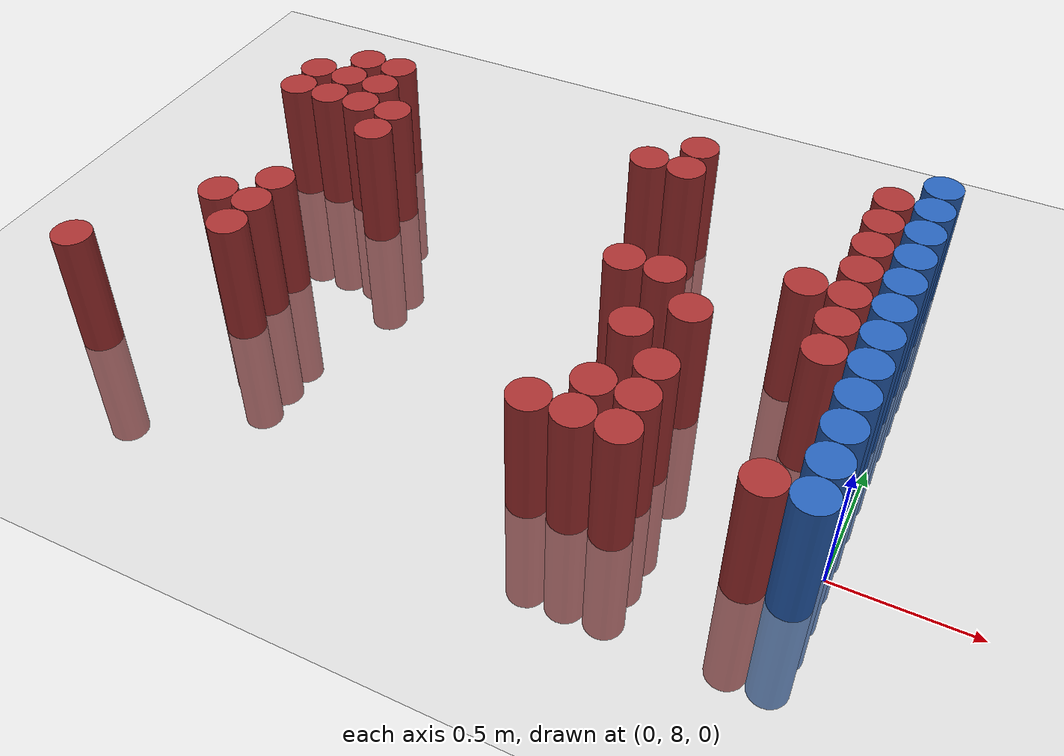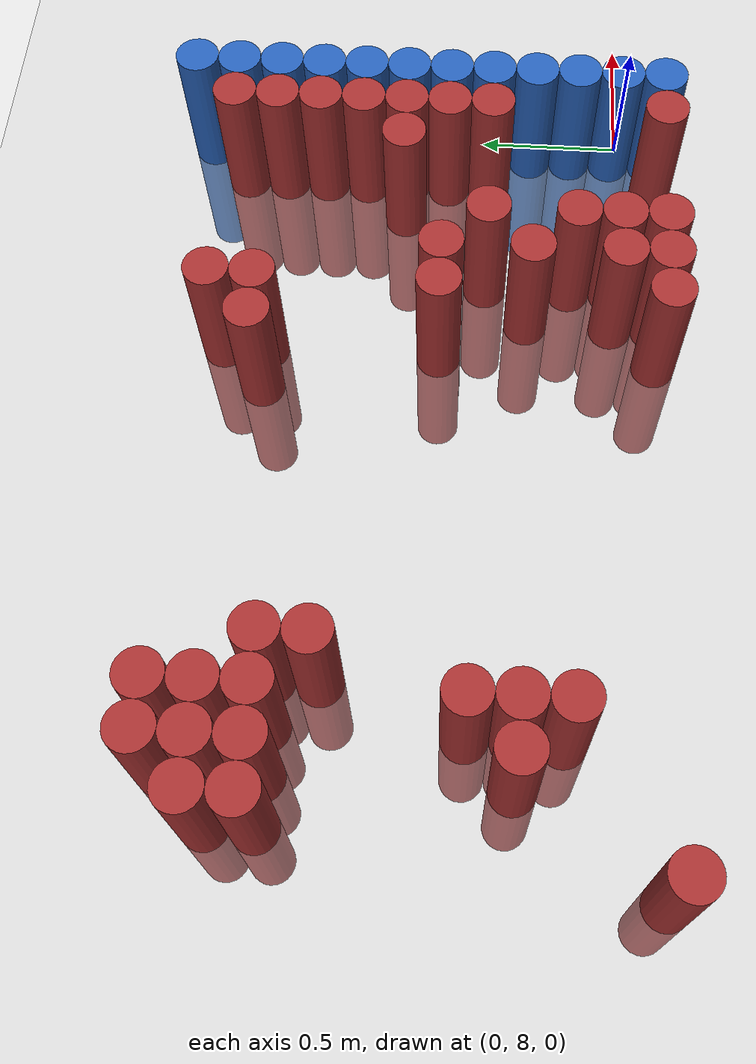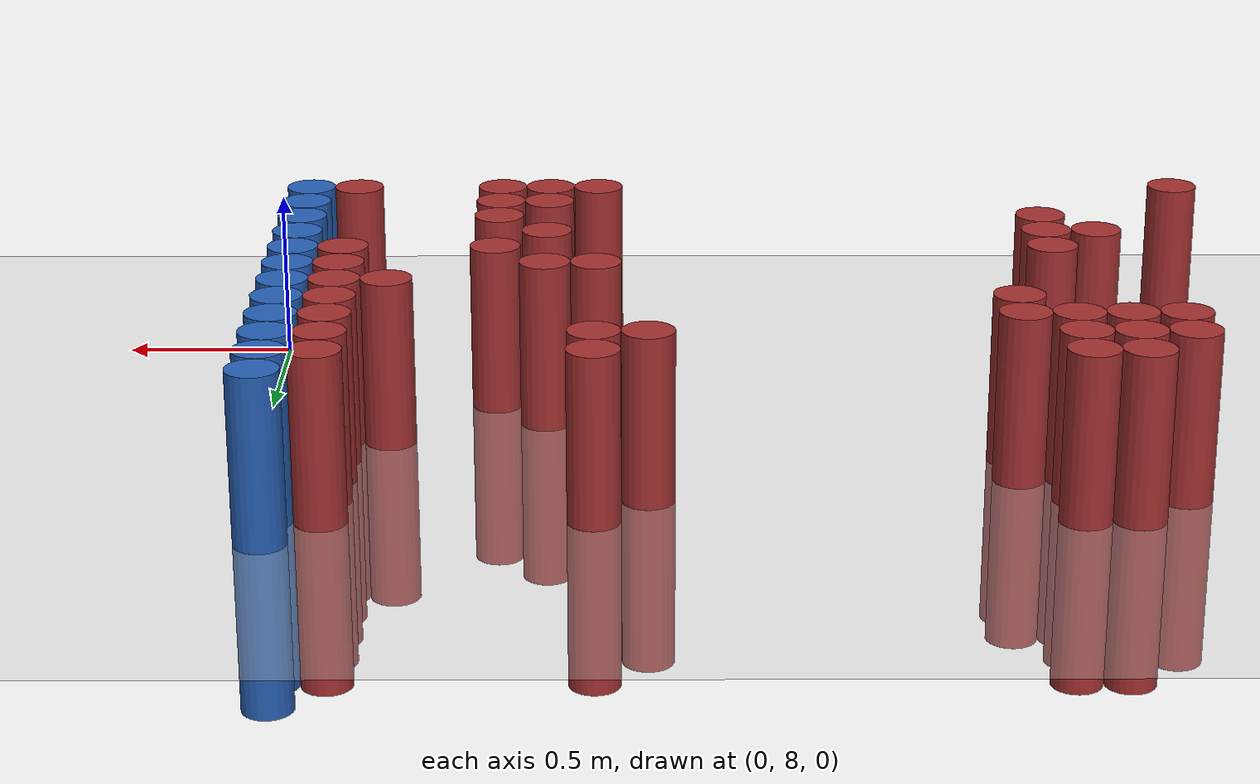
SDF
<sdf version="1.6">
 <world name="default">
  <model name="ground_plane">
   <static>1</static>
   <link name="link">
    <collision name="collision">
     <geometry><plane><normal>0 0 1</normal><size>100 100</size></plane></geometry>
     <surface><friction><ode><mu>100</mu><mu2>50</mu2></ode></friction></surface>
    </collision>
    <visual name="visual">
     <cast_shadows>0</cast_shadows>
     <geometry><plane><normal>0 0 1</normal><size>100 100</size></plane></geometry>
     <material>
      <script><uri>file://media/materials/scripts/gazebo.material</uri><name>Gazebo/Grey</name></script>
     </material>
    </visual>
   </link>
  </model>
  <model name="unit_cylinder_217">
   <static>1</static>
   <pose>-2.775000 7.875000 0.000000 0.000000 0.000000 0.000000</pose>
   <link name="link">
    <inertial>
     <mass>1</mass>
     <inertia><ixx>0.145833</ixx><ixy>0</ixy><ixz>0</ixz><iyy>0.145833</iyy><iyz>0</iyz><izz>0.125</izz></inertia>
    </inertial>
    <collision name="collision">
     <geometry><cylinder><radius>0.075000</radius><length>1</length></cylinder></geometry>
    </collision>
    <visual name="visual">
     <geometry><cylinder><radius>0.075000</radius><length>1</length></cylinder></geometry>
     <material>
      <ambient>0.648000 0.192000 0.192000 1</ambient>
      <diffuse>0.648000 0.192000 0.192000 1</diffuse>
     </material>
     <material>
      <script><name>Gazebo/Grey</name><uri>file://media/materials/scripts/gazebo.material</uri></script>
     </material>
    </visual>
   </link>
  </model>
  <model name="unit_cylinder_221">
   <static>1</static>
   <pose>-2.625000 9.075000 0.000000 0.000000 0.000000 0.000000</pose>
   <link name="link">
    <inertial>
     <mass>1</mass>
     <inertia><ixx>0.145833</ixx><ixy>0</ixy><ixz>0</ixz><iyy>0.145833</iyy><iyz>0</iyz><izz>0.125</izz></inertia>
    </inertial>
    <collision name="collision">
     <geometry><cylinder><radius>0.075000</radius><length>1</length></cylinder></geometry>
    </collision>
    <visual name="visual">
     <geometry><cylinder><radius>0.075000</radius><length>1</length></cylinder></geometry>
     <material>
      <ambient>0.648000 0.192000 0.192000 1</ambient>
      <diffuse>0.648000 0.192000 0.192000 1</diffuse>
     </material>
     <material>
      <script><name>Gazebo/Grey</name><uri>file://media/materials/scripts/gazebo.material</uri></script>
     </material>
    </visual>
   </link>
  </model>
  <model name="unit_cylinder_222">
   <static>1</static>
   <pose>-2.625000 9.225000 0.000000 0.000000 0.000000 0.000000</pose>
   <link name="link">
    <inertial>
     <mass>1</mass>
     <inertia><ixx>0.145833</ixx><ixy>0</ixy><ixz>0</ixz><iyy>0.145833</iyy><iyz>0</iyz><izz>0.125</izz></inertia>
    </inertial>
    <collision name="collision">
     <geometry><cylinder><radius>0.075000</radius><length>1</length></cylinder></geometry>
    </collision>
    <visual name="visual">
     <geometry><cylinder><radius>0.075000</radius><length>1</length></cylinder></geometry>
     <material>
      <ambient>0.648000 0.192000 0.192000 1</ambient>
      <diffuse>0.648000 0.192000 0.192000 1</diffuse>
     </material>
     <material>
      <script><name>Gazebo/Grey</name><uri>file://media/materials/scripts/gazebo.material</uri></script>
     </material>
    </visual>
   </link>
  </model>
  <model name="unit_cylinder_226">
   <static>1</static>
   <pose>-2.475000 8.325000 0.000000 0.000000 0.000000 0.000000</pose>
   <link name="link">
    <inertial>
     <mass>1</mass>
     <inertia><ixx>0.145833</ixx><ixy>0</ixy><ixz>0</ixz><iyy>0.145833</iyy><iyz>0</iyz><izz>0.125</izz></inertia>
    </inertial>
    <collision name="collision">
     <geometry><cylinder><radius>0.075000</radius><length>1</length></cylinder></geometry>
    </collision>
    <visual name="visual">
     <geometry><cylinder><radius>0.075000</radius><length>1</length></cylinder></geometry>
     <material>
      <ambient>0.648000 0.192000 0.192000 1</ambient>
      <diffuse>0.648000 0.192000 0.192000 1</diffuse>
     </material>
     <material>
      <script><name>Gazebo/Grey</name><uri>file://media/materials/scripts/gazebo.material</uri></script>
     </material>
    </visual>
   </link>
  </model>
  <model name="unit_cylinder_227">
   <static>1</static>
   <pose>-2.475000 9.075000 0.000000 0.000000 0.000000 0.000000</pose>
   <link name="link">
    <inertial>
     <mass>1</mass>
     <inertia><ixx>0.145833</ixx><ixy>0</ixy><ixz>0</ixz><iyy>0.145833</iyy><iyz>0</iyz><izz>0.125</izz></inertia>
    </inertial>
    <collision name="collision">
     <geometry><cylinder><radius>0.075000</radius><length>1</length></cylinder></geometry>
    </collision>
    <visual name="visual">
     <geometry><cylinder><radius>0.075000</radius><length>1</length></cylinder></geometry>
     <material>
      <ambient>0.648000 0.192000 0.192000 1</ambient>
      <diffuse>0.648000 0.192000 0.192000 1</diffuse>
     </material>
     <material>
      <script><name>Gazebo/Grey</name><uri>file://media/materials/scripts/gazebo.material</uri></script>
     </material>
    </visual>
   </link>
  </model>
  <model name="unit_cylinder_228">
   <static>1</static>
   <pose>-2.475000 9.225000 0.000000 0.000000 0.000000 0.000000</pose>
   <link name="link">
    <inertial>
     <mass>1</mass>
     <inertia><ixx>0.145833</ixx><ixy>0</ixy><ixz>0</ixz><iyy>0.145833</iyy><iyz>0</iyz><izz>0.125</izz></inertia>
    </inertial>
    <collision name="collision">
     <geometry><cylinder><radius>0.075000</radius><length>1</length></cylinder></geometry>
    </collision>
    <visual name="visual">
     <geometry><cylinder><radius>0.075000</radius><length>1</length></cylinder></geometry>
     <material>
      <ambient>0.648000 0.192000 0.192000 1</ambient>
      <diffuse>0.648000 0.192000 0.192000 1</diffuse>
     </material>
     <material>
      <script><name>Gazebo/Grey</name><uri>file://media/materials/scripts/gazebo.material</uri></script>
     </material>
    </visual>
   </link>
  </model>
  <model name="unit_cylinder_229">
   <static>1</static>
   <pose>-2.475000 9.375000 0.000000 0.000000 0.000000 0.000000</pose>
   <link name="link">
    <inertial>
     <mass>1</mass>
     <inertia><ixx>0.145833</ixx><ixy>0</ixy><ixz>0</ixz><iyy>0.145833</iyy><iyz>0</iyz><izz>0.125</izz></inertia>
    </inertial>
    <collision name="collision">
     <geometry><cylinder><radius>0.075000</radius><length>1</length></cylinder></geometry>
    </collision>
    <visual name="visual">
     <geometry><cylinder><radius>0.075000</radius><length>1</length></cylinder></geometry>
     <material>
      <ambient>0.648000 0.192000 0.192000 1</ambient>
      <diffuse>0.648000 0.192000 0.192000 1</diffuse>
     </material>
     <material>
      <script><name>Gazebo/Grey</name><uri>file://media/materials/scripts/gazebo.material</uri></script>
     </material>
    </visual>
   </link>
  </model>
  <model name="unit_cylinder_234">
   <static>1</static>
   <pose>-2.325000 8.175000 0.000000 0.000000 0.000000 0.000000</pose>
   <link name="link">
    <inertial>
     <mass>1</mass>
     <inertia><ixx>0.145833</ixx><ixy>0</ixy><ixz>0</ixz><iyy>0.145833</iyy><iyz>0</iyz><izz>0.125</izz></inertia>
    </inertial>
    <collision name="collision">
     <geometry><cylinder><radius>0.075000</radius><length>1</length></cylinder></geometry>
    </collision>
    <visual name="visual">
     <geometry><cylinder><radius>0.075000</radius><length>1</length></cylinder></geometry>
     <material>
      <ambient>0.648000 0.192000 0.192000 1</ambient>
      <diffuse>0.648000 0.192000 0.192000 1</diffuse>
     </material>
     <material>
      <script><name>Gazebo/Grey</name><uri>file://media/materials/scripts/gazebo.material</uri></script>
     </material>
    </visual>
   </link>
  </model>
  <model name="unit_cylinder_235">
   <static>1</static>
   <pose>-2.325000 8.325000 0.000000 0.000000 0.000000 0.000000</pose>
   <link name="link">
    <inertial>
     <mass>1</mass>
     <inertia><ixx>0.145833</ixx><ixy>0</ixy><ixz>0</ixz><iyy>0.145833</iyy><iyz>0</iyz><izz>0.125</izz></inertia>
    </inertial>
    <collision name="collision">
     <geometry><cylinder><radius>0.075000</radius><length>1</length></cylinder></geometry>
    </collision>
    <visual name="visual">
     <geometry><cylinder><radius>0.075000</radius><length>1</length></cylinder></geometry>
     <material>
      <ambient>0.648000 0.192000 0.192000 1</ambient>
      <diffuse>0.648000 0.192000 0.192000 1</diffuse>
     </material>
     <material>
      <script><name>Gazebo/Grey</name><uri>file://media/materials/scripts/gazebo.material</uri></script>
     </material>
    </visual>
   </link>
  </model>
  <model name="unit_cylinder_236">
   <static>1</static>
   <pose>-2.325000 8.475000 0.000000 0.000000 0.000000 0.000000</pose>
   <link name="link">
    <inertial>
     <mass>1</mass>
     <inertia><ixx>0.145833</ixx><ixy>0</ixy><ixz>0</ixz><iyy>0.145833</iyy><iyz>0</iyz><izz>0.125</izz></inertia>
    </inertial>
    <collision name="collision">
     <geometry><cylinder><radius>0.075000</radius><length>1</length></cylinder></geometry>
    </collision>
    <visual name="visual">
     <geometry><cylinder><radius>0.075000</radius><length>1</length></cylinder></geometry>
     <material>
      <ambient>0.648000 0.192000 0.192000 1</ambient>
      <diffuse>0.648000 0.192000 0.192000 1</diffuse>
     </material>
     <material>
      <script><name>Gazebo/Grey</name><uri>file://media/materials/scripts/gazebo.material</uri></script>
     </material>
    </visual>
   </link>
  </model>
  <model name="unit_cylinder_237">
   <static>1</static>
   <pose>-2.325000 9.075000 0.000000 0.000000 0.000000 0.000000</pose>
   <link name="link">
    <inertial>
     <mass>1</mass>
     <inertia><ixx>0.145833</ixx><ixy>0</ixy><ixz>0</ixz><iyy>0.145833</iyy><iyz>0</iyz><izz>0.125</izz></inertia>
    </inertial>
    <collision name="collision">
     <geometry><cylinder><radius>0.075000</radius><length>1</length></cylinder></geometry>
    </collision>
    <visual name="visual">
     <geometry><cylinder><radius>0.075000</radius><length>1</length></cylinder></geometry>
     <material>
      <ambient>0.648000 0.192000 0.192000 1</ambient>
      <diffuse>0.648000 0.192000 0.192000 1</diffuse>
     </material>
     <material>
      <script><name>Gazebo/Grey</name><uri>file://media/materials/scripts/gazebo.material</uri></script>
     </material>
    </visual>
   </link>
  </model>
  <model name="unit_cylinder_238">
   <static>1</static>
   <pose>-2.325000 9.225000 0.000000 0.000000 0.000000 0.000000</pose>
   <link name="link">
    <inertial>
     <mass>1</mass>
     <inertia><ixx>0.145833</ixx><ixy>0</ixy><ixz>0</ixz><iyy>0.145833</iyy><iyz>0</iyz><izz>0.125</izz></inertia>
    </inertial>
    <collision name="collision">
     <geometry><cylinder><radius>0.075000</radius><length>1</length></cylinder></geometry>
    </collision>
    <visual name="visual">
     <geometry><cylinder><radius>0.075000</radius><length>1</length></cylinder></geometry>
     <material>
      <ambient>0.648000 0.192000 0.192000 1</ambient>
      <diffuse>0.648000 0.192000 0.192000 1</diffuse>
     </material>
     <material>
      <script><name>Gazebo/Grey</name><uri>file://media/materials/scripts/gazebo.material</uri></script>
     </material>
    </visual>
   </link>
  </model>
  <model name="unit_cylinder_239">
   <static>1</static>
   <pose>-2.325000 9.375000 0.000000 0.000000 0.000000 0.000000</pose>
   <link name="link">
    <inertial>
     <mass>1</mass>
     <inertia><ixx>0.145833</ixx><ixy>0</ixy><ixz>0</ixz><iyy>0.145833</iyy><iyz>0</iyz><izz>0.125</izz></inertia>
    </inertial>
    <collision name="collision">
     <geometry><cylinder><radius>0.075000</radius><length>1</length></cylinder></geometry>
    </collision>
    <visual name="visual">
     <geometry><cylinder><radius>0.075000</radius><length>1</length></cylinder></geometry>
     <material>
      <ambient>0.648000 0.192000 0.192000 1</ambient>
      <diffuse>0.648000 0.192000 0.192000 1</diffuse>
     </material>
     <material>
      <script><name>Gazebo/Grey</name><uri>file://media/materials/scripts/gazebo.material</uri></script>
     </material>
    </visual>
   </link>
  </model>
  <model name="unit_cylinder_240">
   <static>1</static>
   <pose>-2.175000 8.925000 0.000000 0.000000 0.000000 0.000000</pose>
   <link name="link">
    <inertial>
     <mass>1</mass>
     <inertia><ixx>0.145833</ixx><ixy>0</ixy><ixz>0</ixz><iyy>0.145833</iyy><iyz>0</iyz><izz>0.125</izz></inertia>
    </inertial>
    <collision name="collision">
     <geometry><cylinder><radius>0.075000</radius><length>1</length></cylinder></geometry>
    </collision>
    <visual name="visual">
     <geometry><cylinder><radius>0.075000</radius><length>1</length></cylinder></geometry>
     <material>
      <ambient>0.648000 0.192000 0.192000 1</ambient>
      <diffuse>0.648000 0.192000 0.192000 1</diffuse>
     </material>
     <material>
      <script><name>Gazebo/Grey</name><uri>file://media/materials/scripts/gazebo.material</uri></script>
     </material>
    </visual>
   </link>
  </model>
  <model name="unit_cylinder_241">
   <static>1</static>
   <pose>-2.175000 9.075000 0.000000 0.000000 0.000000 0.000000</pose>
   <link name="link">
    <inertial>
     <mass>1</mass>
     <inertia><ixx>0.145833</ixx><ixy>0</ixy><ixz>0</ixz><iyy>0.145833</iyy><iyz>0</iyz><izz>0.125</izz></inertia>
    </inertial>
    <collision name="collision">
     <geometry><cylinder><radius>0.075000</radius><length>1</length></cylinder></geometry>
    </collision>
    <visual name="visual">
     <geometry><cylinder><radius>0.075000</radius><length>1</length></cylinder></geometry>
     <material>
      <ambient>0.648000 0.192000 0.192000 1</ambient>
      <diffuse>0.648000 0.192000 0.192000 1</diffuse>
     </material>
     <material>
      <script><name>Gazebo/Grey</name><uri>file://media/materials/scripts/gazebo.material</uri></script>
     </material>
    </visual>
   </link>
  </model>
  <model name="unit_cylinder_263">
   <static>1</static>
   <pose>-1.125000 9.225000 0.000000 0.000000 0.000000 0.000000</pose>
   <link name="link">
    <inertial>
     <mass>1</mass>
     <inertia><ixx>0.145833</ixx><ixy>0</ixy><ixz>0</ixz><iyy>0.145833</iyy><iyz>0</iyz><izz>0.125</izz></inertia>
    </inertial>
    <collision name="collision">
     <geometry><cylinder><radius>0.075000</radius><length>1</length></cylinder></geometry>
    </collision>
    <visual name="visual">
     <geometry><cylinder><radius>0.075000</radius><length>1</length></cylinder></geometry>
     <material>
      <ambient>0.648000 0.192000 0.192000 1</ambient>
      <diffuse>0.648000 0.192000 0.192000 1</diffuse>
     </material>
     <material>
      <script><name>Gazebo/Grey</name><uri>file://media/materials/scripts/gazebo.material</uri></script>
     </material>
    </visual>
   </link>
  </model>
  <model name="unit_cylinder_269">
   <static>1</static>
   <pose>-0.975000 7.875000 0.000000 0.000000 0.000000 0.000000</pose>
   <link name="link">
    <inertial>
     <mass>1</mass>
     <inertia><ixx>0.145833</ixx><ixy>0</ixy><ixz>0</ixz><iyy>0.145833</iyy><iyz>0</iyz><izz>0.125</izz></inertia>
    </inertial>
    <collision name="collision">
     <geometry><cylinder><radius>0.075000</radius><length>1</length></cylinder></geometry>
    </collision>
    <visual name="visual">
     <geometry><cylinder><radius>0.075000</radius><length>1</length></cylinder></geometry>
     <material>
      <ambient>0.648000 0.192000 0.192000 1</ambient>
      <diffuse>0.648000 0.192000 0.192000 1</diffuse>
     </material>
     <material>
      <script><name>Gazebo/Grey</name><uri>file://media/materials/scripts/gazebo.material</uri></script>
     </material>
    </visual>
   </link>
  </model>
  <model name="unit_cylinder_270">
   <static>1</static>
   <pose>-0.975000 8.625000 0.000000 0.000000 0.000000 0.000000</pose>
   <link name="link">
    <inertial>
     <mass>1</mass>
     <inertia><ixx>0.145833</ixx><ixy>0</ixy><ixz>0</ixz><iyy>0.145833</iyy><iyz>0</iyz><izz>0.125</izz></inertia>
    </inertial>
    <collision name="collision">
     <geometry><cylinder><radius>0.075000</radius><length>1</length></cylinder></geometry>
    </collision>
    <visual name="visual">
     <geometry><cylinder><radius>0.075000</radius><length>1</length></cylinder></geometry>
     <material>
      <ambient>0.648000 0.192000 0.192000 1</ambient>
      <diffuse>0.648000 0.192000 0.192000 1</diffuse>
     </material>
     <material>
      <script><name>Gazebo/Grey</name><uri>file://media/materials/scripts/gazebo.material</uri></script>
     </material>
    </visual>
   </link>
  </model>
  <model name="unit_cylinder_271">
   <static>1</static>
   <pose>-0.975000 9.225000 0.000000 0.000000 0.000000 0.000000</pose>
   <link name="link">
    <inertial>
     <mass>1</mass>
     <inertia><ixx>0.145833</ixx><ixy>0</ixy><ixz>0</ixz><iyy>0.145833</iyy><iyz>0</iyz><izz>0.125</izz></inertia>
    </inertial>
    <collision name="collision">
     <geometry><cylinder><radius>0.075000</radius><length>1</length></cylinder></geometry>
    </collision>
    <visual name="visual">
     <geometry><cylinder><radius>0.075000</radius><length>1</length></cylinder></geometry>
     <material>
      <ambient>0.648000 0.192000 0.192000 1</ambient>
      <diffuse>0.648000 0.192000 0.192000 1</diffuse>
     </material>
     <material>
      <script><name>Gazebo/Grey</name><uri>file://media/materials/scripts/gazebo.material</uri></script>
     </material>
    </visual>
   </link>
  </model>
  <model name="unit_cylinder_272">
   <static>1</static>
   <pose>-0.975000 9.375000 0.000000 0.000000 0.000000 0.000000</pose>
   <link name="link">
    <inertial>
     <mass>1</mass>
     <inertia><ixx>0.145833</ixx><ixy>0</ixy><ixz>0</ixz><iyy>0.145833</iyy><iyz>0</iyz><izz>0.125</izz></inertia>
    </inertial>
    <collision name="collision">
     <geometry><cylinder><radius>0.075000</radius><length>1</length></cylinder></geometry>
    </collision>
    <visual name="visual">
     <geometry><cylinder><radius>0.075000</radius><length>1</length></cylinder></geometry>
     <material>
      <ambient>0.648000 0.192000 0.192000 1</ambient>
      <diffuse>0.648000 0.192000 0.192000 1</diffuse>
     </material>
     <material>
      <script><name>Gazebo/Grey</name><uri>file://media/materials/scripts/gazebo.material</uri></script>
     </material>
    </visual>
   </link>
  </model>
  <model name="unit_cylinder_278">
   <static>1</static>
   <pose>-0.825000 7.875000 0.000000 0.000000 0.000000 0.000000</pose>
   <link name="link">
    <inertial>
     <mass>1</mass>
     <inertia><ixx>0.145833</ixx><ixy>0</ixy><ixz>0</ixz><iyy>0.145833</iyy><iyz>0</iyz><izz>0.125</izz></inertia>
    </inertial>
    <collision name="collision">
     <geometry><cylinder><radius>0.075000</radius><length>1</length></cylinder></geometry>
    </collision>
    <visual name="visual">
     <geometry><cylinder><radius>0.075000</radius><length>1</length></cylinder></geometry>
     <material>
      <ambient>0.648000 0.192000 0.192000 1</ambient>
      <diffuse>0.648000 0.192000 0.192000 1</diffuse>
     </material>
     <material>
      <script><name>Gazebo/Grey</name><uri>file://media/materials/scripts/gazebo.material</uri></script>
     </material>
    </visual>
   </link>
  </model>
  <model name="unit_cylinder_279">
   <static>1</static>
   <pose>-0.825000 8.025000 0.000000 0.000000 0.000000 0.000000</pose>
   <link name="link">
    <inertial>
     <mass>1</mass>
     <inertia><ixx>0.145833</ixx><ixy>0</ixy><ixz>0</ixz><iyy>0.145833</iyy><iyz>0</iyz><izz>0.125</izz></inertia>
    </inertial>
    <collision name="collision">
     <geometry><cylinder><radius>0.075000</radius><length>1</length></cylinder></geometry>
    </collision>
    <visual name="visual">
     <geometry><cylinder><radius>0.075000</radius><length>1</length></cylinder></geometry>
     <material>
      <ambient>0.648000 0.192000 0.192000 1</ambient>
      <diffuse>0.648000 0.192000 0.192000 1</diffuse>
     </material>
     <material>
      <script><name>Gazebo/Grey</name><uri>file://media/materials/scripts/gazebo.material</uri></script>
     </material>
    </visual>
   </link>
  </model>
  <model name="unit_cylinder_280">
   <static>1</static>
   <pose>-0.825000 8.325000 0.000000 0.000000 0.000000 0.000000</pose>
   <link name="link">
    <inertial>
     <mass>1</mass>
     <inertia><ixx>0.145833</ixx><ixy>0</ixy><ixz>0</ixz><iyy>0.145833</iyy><iyz>0</iyz><izz>0.125</izz></inertia>
    </inertial>
    <collision name="collision">
     <geometry><cylinder><radius>0.075000</radius><length>1</length></cylinder></geometry>
    </collision>
    <visual name="visual">
     <geometry><cylinder><radius>0.075000</radius><length>1</length></cylinder></geometry>
     <material>
      <ambient>0.648000 0.192000 0.192000 1</ambient>
      <diffuse>0.648000 0.192000 0.192000 1</diffuse>
     </material>
     <material>
      <script><name>Gazebo/Grey</name><uri>file://media/materials/scripts/gazebo.material</uri></script>
     </material>
    </visual>
   </link>
  </model>
  <model name="unit_cylinder_281">
   <static>1</static>
   <pose>-0.825000 8.625000 0.000000 0.000000 0.000000 0.000000</pose>
   <link name="link">
    <inertial>
     <mass>1</mass>
     <inertia><ixx>0.145833</ixx><ixy>0</ixy><ixz>0</ixz><iyy>0.145833</iyy><iyz>0</iyz><izz>0.125</izz></inertia>
    </inertial>
    <collision name="collision">
     <geometry><cylinder><radius>0.075000</radius><length>1</length></cylinder></geometry>
    </collision>
    <visual name="visual">
     <geometry><cylinder><radius>0.075000</radius><length>1</length></cylinder></geometry>
     <material>
      <ambient>0.648000 0.192000 0.192000 1</ambient>
      <diffuse>0.648000 0.192000 0.192000 1</diffuse>
     </material>
     <material>
      <script><name>Gazebo/Grey</name><uri>file://media/materials/scripts/gazebo.material</uri></script>
     </material>
    </visual>
   </link>
  </model>
  <model name="unit_cylinder_284">
   <static>1</static>
   <pose>-0.675000 7.875000 0.000000 0.000000 0.000000 0.000000</pose>
   <link name="link">
    <inertial>
     <mass>1</mass>
     <inertia><ixx>0.145833</ixx><ixy>0</ixy><ixz>0</ixz><iyy>0.145833</iyy><iyz>0</iyz><izz>0.125</izz></inertia>
    </inertial>
    <collision name="collision">
     <geometry><cylinder><radius>0.075000</radius><length>1</length></cylinder></geometry>
    </collision>
    <visual name="visual">
     <geometry><cylinder><radius>0.075000</radius><length>1</length></cylinder></geometry>
     <material>
      <ambient>0.648000 0.192000 0.192000 1</ambient>
      <diffuse>0.648000 0.192000 0.192000 1</diffuse>
     </material>
     <material>
      <script><name>Gazebo/Grey</name><uri>file://media/materials/scripts/gazebo.material</uri></script>
     </material>
    </visual>
   </link>
  </model>
  <model name="unit_cylinder_285">
   <static>1</static>
   <pose>-0.675000 8.025000 0.000000 0.000000 0.000000 0.000000</pose>
   <link name="link">
    <inertial>
     <mass>1</mass>
     <inertia><ixx>0.145833</ixx><ixy>0</ixy><ixz>0</ixz><iyy>0.145833</iyy><iyz>0</iyz><izz>0.125</izz></inertia>
    </inertial>
    <collision name="collision">
     <geometry><cylinder><radius>0.075000</radius><length>1</length></cylinder></geometry>
    </collision>
    <visual name="visual">
     <geometry><cylinder><radius>0.075000</radius><length>1</length></cylinder></geometry>
     <material>
      <ambient>0.648000 0.192000 0.192000 1</ambient>
      <diffuse>0.648000 0.192000 0.192000 1</diffuse>
     </material>
     <material>
      <script><name>Gazebo/Grey</name><uri>file://media/materials/scripts/gazebo.material</uri></script>
     </material>
    </visual>
   </link>
  </model>
  <model name="unit_cylinder_286">
   <static>1</static>
   <pose>-0.675000 8.175000 0.000000 0.000000 0.000000 0.000000</pose>
   <link name="link">
    <inertial>
     <mass>1</mass>
     <inertia><ixx>0.145833</ixx><ixy>0</ixy><ixz>0</ixz><iyy>0.145833</iyy><iyz>0</iyz><izz>0.125</izz></inertia>
    </inertial>
    <collision name="collision">
     <geometry><cylinder><radius>0.075000</radius><length>1</length></cylinder></geometry>
    </collision>
    <visual name="visual">
     <geometry><cylinder><radius>0.075000</radius><length>1</length></cylinder></geometry>
     <material>
      <ambient>0.648000 0.192000 0.192000 1</ambient>
      <diffuse>0.648000 0.192000 0.192000 1</diffuse>
     </material>
     <material>
      <script><name>Gazebo/Grey</name><uri>file://media/materials/scripts/gazebo.material</uri></script>
     </material>
    </visual>
   </link>
  </model>
  <model name="unit_cylinder_287">
   <static>1</static>
   <pose>-0.675000 8.475000 0.000000 0.000000 0.000000 0.000000</pose>
   <link name="link">
    <inertial>
     <mass>1</mass>
     <inertia><ixx>0.145833</ixx><ixy>0</ixy><ixz>0</ixz><iyy>0.145833</iyy><iyz>0</iyz><izz>0.125</izz></inertia>
    </inertial>
    <collision name="collision">
     <geometry><cylinder><radius>0.075000</radius><length>1</length></cylinder></geometry>
    </collision>
    <visual name="visual">
     <geometry><cylinder><radius>0.075000</radius><length>1</length></cylinder></geometry>
     <material>
      <ambient>0.648000 0.192000 0.192000 1</ambient>
      <diffuse>0.648000 0.192000 0.192000 1</diffuse>
     </material>
     <material>
      <script><name>Gazebo/Grey</name><uri>file://media/materials/scripts/gazebo.material</uri></script>
     </material>
    </visual>
   </link>
  </model>
  <model name="unit_cylinder_296">
   <static>1</static>
   <pose>-0.375000 8.775000 0.000000 0.000000 0.000000 0.000000</pose>
   <link name="link">
    <inertial>
     <mass>1</mass>
     <inertia><ixx>0.145833</ixx><ixy>0</ixy><ixz>0</ixz><iyy>0.145833</iyy><iyz>0</iyz><izz>0.125</izz></inertia>
    </inertial>
    <collision name="collision">
     <geometry><cylinder><radius>0.075000</radius><length>1</length></cylinder></geometry>
    </collision>
    <visual name="visual">
     <geometry><cylinder><radius>0.075000</radius><length>1</length></cylinder></geometry>
     <material>
      <ambient>0.648000 0.192000 0.192000 1</ambient>
      <diffuse>0.648000 0.192000 0.192000 1</diffuse>
     </material>
     <material>
      <script><name>Gazebo/Grey</name><uri>file://media/materials/scripts/gazebo.material</uri></script>
     </material>
    </visual>
   </link>
  </model>
  <model name="unit_cylinder_305">
   <static>1</static>
   <pose>-0.225000 7.875000 0.000000 0.000000 0.000000 0.000000</pose>
   <link name="link">
    <inertial>
     <mass>1</mass>
     <inertia><ixx>0.145833</ixx><ixy>0</ixy><ixz>0</ixz><iyy>0.145833</iyy><iyz>0</iyz><izz>0.125</izz></inertia>
    </inertial>
    <collision name="collision">
     <geometry><cylinder><radius>0.075000</radius><length>1</length></cylinder></geometry>
    </collision>
    <visual name="visual">
     <geometry><cylinder><radius>0.075000</radius><length>1</length></cylinder></geometry>
     <material>
      <ambient>0.648000 0.192000 0.192000 1</ambient>
      <diffuse>0.648000 0.192000 0.192000 1</diffuse>
     </material>
     <material>
      <script><name>Gazebo/Grey</name><uri>file://media/materials/scripts/gazebo.material</uri></script>
     </material>
    </visual>
   </link>
  </model>
  <model name="unit_cylinder_306">
   <static>1</static>
   <pose>-0.225000 8.475000 0.000000 0.000000 0.000000 0.000000</pose>
   <link name="link">
    <inertial>
     <mass>1</mass>
     <inertia><ixx>0.145833</ixx><ixy>0</ixy><ixz>0</ixz><iyy>0.145833</iyy><iyz>0</iyz><izz>0.125</izz></inertia>
    </inertial>
    <collision name="collision">
     <geometry><cylinder><radius>0.075000</radius><length>1</length></cylinder></geometry>
    </collision>
    <visual name="visual">
     <geometry><cylinder><radius>0.075000</radius><length>1</length></cylinder></geometry>
     <material>
      <ambient>0.648000 0.192000 0.192000 1</ambient>
      <diffuse>0.648000 0.192000 0.192000 1</diffuse>
     </material>
     <material>
      <script><name>Gazebo/Grey</name><uri>file://media/materials/scripts/gazebo.material</uri></script>
     </material>
    </visual>
   </link>
  </model>
  <model name="unit_cylinder_307">
   <static>1</static>
   <pose>-0.225000 8.625000 0.000000 0.000000 0.000000 0.000000</pose>
   <link name="link">
    <inertial>
     <mass>1</mass>
     <inertia><ixx>0.145833</ixx><ixy>0</ixy><ixz>0</ixz><iyy>0.145833</iyy><iyz>0</iyz><izz>0.125</izz></inertia>
    </inertial>
    <collision name="collision">
     <geometry><cylinder><radius>0.075000</radius><length>1</length></cylinder></geometry>
    </collision>
    <visual name="visual">
     <geometry><cylinder><radius>0.075000</radius><length>1</length></cylinder></geometry>
     <material>
      <ambient>0.648000 0.192000 0.192000 1</ambient>
      <diffuse>0.648000 0.192000 0.192000 1</diffuse>
     </material>
     <material>
      <script><name>Gazebo/Grey</name><uri>file://media/materials/scripts/gazebo.material</uri></script>
     </material>
    </visual>
   </link>
  </model>
  <model name="unit_cylinder_308">
   <static>1</static>
   <pose>-0.225000 8.775000 0.000000 0.000000 0.000000 0.000000</pose>
   <link name="link">
    <inertial>
     <mass>1</mass>
     <inertia><ixx>0.145833</ixx><ixy>0</ixy><ixz>0</ixz><iyy>0.145833</iyy><iyz>0</iyz><izz>0.125</izz></inertia>
    </inertial>
    <collision name="collision">
     <geometry><cylinder><radius>0.075000</radius><length>1</length></cylinder></geometry>
    </collision>
    <visual name="visual">
     <geometry><cylinder><radius>0.075000</radius><length>1</length></cylinder></geometry>
     <material>
      <ambient>0.648000 0.192000 0.192000 1</ambient>
      <diffuse>0.648000 0.192000 0.192000 1</diffuse>
     </material>
     <material>
      <script><name>Gazebo/Grey</name><uri>file://media/materials/scripts/gazebo.material</uri></script>
     </material>
    </visual>
   </link>
  </model>
  <model name="unit_cylinder_309">
   <static>1</static>
   <pose>-0.225000 8.925000 0.000000 0.000000 0.000000 0.000000</pose>
   <link name="link">
    <inertial>
     <mass>1</mass>
     <inertia><ixx>0.145833</ixx><ixy>0</ixy><ixz>0</ixz><iyy>0.145833</iyy><iyz>0</iyz><izz>0.125</izz></inertia>
    </inertial>
    <collision name="collision">
     <geometry><cylinder><radius>0.075000</radius><length>1</length></cylinder></geometry>
    </collision>
    <visual name="visual">
     <geometry><cylinder><radius>0.075000</radius><length>1</length></cylinder></geometry>
     <material>
      <ambient>0.648000 0.192000 0.192000 1</ambient>
      <diffuse>0.648000 0.192000 0.192000 1</diffuse>
     </material>
     <material>
      <script><name>Gazebo/Grey</name><uri>file://media/materials/scripts/gazebo.material</uri></script>
     </material>
    </visual>
   </link>
  </model>
  <model name="unit_cylinder_310">
   <static>1</static>
   <pose>-0.225000 9.075000 0.000000 0.000000 0.000000 0.000000</pose>
   <link name="link">
    <inertial>
     <mass>1</mass>
     <inertia><ixx>0.145833</ixx><ixy>0</ixy><ixz>0</ixz><iyy>0.145833</iyy><iyz>0</iyz><izz>0.125</izz></inertia>
    </inertial>
    <collision name="collision">
     <geometry><cylinder><radius>0.075000</radius><length>1</length></cylinder></geometry>
    </collision>
    <visual name="visual">
     <geometry><cylinder><radius>0.075000</radius><length>1</length></cylinder></geometry>
     <material>
      <ambient>0.648000 0.192000 0.192000 1</ambient>
      <diffuse>0.648000 0.192000 0.192000 1</diffuse>
     </material>
     <material>
      <script><name>Gazebo/Grey</name><uri>file://media/materials/scripts/gazebo.material</uri></script>
     </material>
    </visual>
   </link>
  </model>
  <model name="unit_cylinder_311">
   <static>1</static>
   <pose>-0.225000 9.225000 0.000000 0.000000 0.000000 0.000000</pose>
   <link name="link">
    <inertial>
     <mass>1</mass>
     <inertia><ixx>0.145833</ixx><ixy>0</ixy><ixz>0</ixz><iyy>0.145833</iyy><iyz>0</iyz><izz>0.125</izz></inertia>
    </inertial>
    <collision name="collision">
     <geometry><cylinder><radius>0.075000</radius><length>1</length></cylinder></geometry>
    </collision>
    <visual name="visual">
     <geometry><cylinder><radius>0.075000</radius><length>1</length></cylinder></geometry>
     <material>
      <ambient>0.648000 0.192000 0.192000 1</ambient>
      <diffuse>0.648000 0.192000 0.192000 1</diffuse>
     </material>
     <material>
      <script><name>Gazebo/Grey</name><uri>file://media/materials/scripts/gazebo.material</uri></script>
     </material>
    </visual>
   </link>
  </model>
  <model name="unit_cylinder_312">
   <static>1</static>
   <pose>-0.225000 9.375000 0.000000 0.000000 0.000000 0.000000</pose>
   <link name="link">
    <inertial>
     <mass>1</mass>
     <inertia><ixx>0.145833</ixx><ixy>0</ixy><ixz>0</ixz><iyy>0.145833</iyy><iyz>0</iyz><izz>0.125</izz></inertia>
    </inertial>
    <collision name="collision">
     <geometry><cylinder><radius>0.075000</radius><length>1</length></cylinder></geometry>
    </collision>
    <visual name="visual">
     <geometry><cylinder><radius>0.075000</radius><length>1</length></cylinder></geometry>
     <material>
      <ambient>0.648000 0.192000 0.192000 1</ambient>
      <diffuse>0.648000 0.192000 0.192000 1</diffuse>
     </material>
     <material>
      <script><name>Gazebo/Grey</name><uri>file://media/materials/scripts/gazebo.material</uri></script>
     </material>
    </visual>
   </link>
  </model>
  <model name="unit_cylinder_331">
   <static>1</static>
   <pose>-0.075000 7.875000 0.000000 0.000000 0.000000 0.000000</pose>
   <link name="link">
    <inertial>
     <mass>1</mass>
     <inertia><ixx>0.145833</ixx><ixy>0</ixy><ixz>0</ixz><iyy>0.145833</iyy><iyz>0</iyz><izz>0.125</izz></inertia>
    </inertial>
    <collision name="collision">
     <geometry><cylinder><radius>0.075000</radius><length>1</length></cylinder></geometry>
    </collision>
    <visual name="visual">
     <geometry><cylinder><radius>0.075000</radius><length>1</length></cylinder></geometry>
     <material>
      <ambient>0.152000 0.379000 0.720000 1</ambient>
      <diffuse>0.152000 0.379000 0.720000 1</diffuse>
     </material>
     <material>
      <script><name>Gazebo/Grey</name><uri>file://media/materials/scripts/gazebo.material</uri></script>
     </material>
    </visual>
   </link>
  </model>
  <model name="unit_cylinder_332">
   <static>1</static>
   <pose>-0.075000 8.025000 0.000000 0.000000 0.000000 0.000000</pose>
   <link name="link">
    <inertial>
     <mass>1</mass>
     <inertia><ixx>0.145833</ixx><ixy>0</ixy><ixz>0</ixz><iyy>0.145833</iyy><iyz>0</iyz><izz>0.125</izz></inertia>
    </inertial>
    <collision name="collision">
     <geometry><cylinder><radius>0.075000</radius><length>1</length></cylinder></geometry>
    </collision>
    <visual name="visual">
     <geometry><cylinder><radius>0.075000</radius><length>1</length></cylinder></geometry>
     <material>
      <ambient>0.152000 0.379000 0.720000 1</ambient>
      <diffuse>0.152000 0.379000 0.720000 1</diffuse>
     </material>
     <material>
      <script><name>Gazebo/Grey</name><uri>file://media/materials/scripts/gazebo.material</uri></script>
     </material>
    </visual>
   </link>
  </model>
  <model name="unit_cylinder_333">
   <static>1</static>
   <pose>-0.075000 8.175000 0.000000 0.000000 0.000000 0.000000</pose>
   <link name="link">
    <inertial>
     <mass>1</mass>
     <inertia><ixx>0.145833</ixx><ixy>0</ixy><ixz>0</ixz><iyy>0.145833</iyy><iyz>0</iyz><izz>0.125</izz></inertia>
    </inertial>
    <collision name="collision">
     <geometry><cylinder><radius>0.075000</radius><length>1</length></cylinder></geometry>
    </collision>
    <visual name="visual">
     <geometry><cylinder><radius>0.075000</radius><length>1</length></cylinder></geometry>
     <material>
      <ambient>0.152000 0.379000 0.720000 1</ambient>
      <diffuse>0.152000 0.379000 0.720000 1</diffuse>
     </material>
     <material>
      <script><name>Gazebo/Grey</name><uri>file://media/materials/scripts/gazebo.material</uri></script>
     </material>
    </visual>
   </link>
  </model>
  <model name="unit_cylinder_334">
   <static>1</static>
   <pose>-0.075000 8.325000 0.000000 0.000000 0.000000 0.000000</pose>
   <link name="link">
    <inertial>
     <mass>1</mass>
     <inertia><ixx>0.145833</ixx><ixy>0</ixy><ixz>0</ixz><iyy>0.145833</iyy><iyz>0</iyz><izz>0.125</izz></inertia>
    </inertial>
    <collision name="collision">
     <geometry><cylinder><radius>0.075000</radius><length>1</length></cylinder></geometry>
    </collision>
    <visual name="visual">
     <geometry><cylinder><radius>0.075000</radius><length>1</length></cylinder></geometry>
     <material>
      <ambient>0.152000 0.379000 0.720000 1</ambient>
      <diffuse>0.152000 0.379000 0.720000 1</diffuse>
     </material>
     <material>
      <script><name>Gazebo/Grey</name><uri>file://media/materials/scripts/gazebo.material</uri></script>
     </material>
    </visual>
   </link>
  </model>
  <model name="unit_cylinder_335">
   <static>1</static>
   <pose>-0.075000 8.475000 0.000000 0.000000 0.000000 0.000000</pose>
   <link name="link">
    <inertial>
     <mass>1</mass>
     <inertia><ixx>0.145833</ixx><ixy>0</ixy><ixz>0</ixz><iyy>0.145833</iyy><iyz>0</iyz><izz>0.125</izz></inertia>
    </inertial>
    <collision name="collision">
     <geometry><cylinder><radius>0.075000</radius><length>1</length></cylinder></geometry>
    </collision>
    <visual name="visual">
     <geometry><cylinder><radius>0.075000</radius><length>1</length></cylinder></geometry>
     <material>
      <ambient>0.152000 0.379000 0.720000 1</ambient>
      <diffuse>0.152000 0.379000 0.720000 1</diffuse>
     </material>
     <material>
      <script><name>Gazebo/Grey</name><uri>file://media/materials/scripts/gazebo.material</uri></script>
     </material>
    </visual>
   </link>
  </model>
  <model name="unit_cylinder_336">
   <static>1</static>
   <pose>-0.075000 8.625000 0.000000 0.000000 0.000000 0.000000</pose>
   <link name="link">
    <inertial>
     <mass>1</mass>
     <inertia><ixx>0.145833</ixx><ixy>0</ixy><ixz>0</ixz><iyy>0.145833</iyy><iyz>0</iyz><izz>0.125</izz></inertia>
    </inertial>
    <collision name="collision">
     <geometry><cylinder><radius>0.075000</radius><length>1</length></cylinder></geometry>
    </collision>
    <visual name="visual">
     <geometry><cylinder><radius>0.075000</radius><length>1</length></cylinder></geometry>
     <material>
      <ambient>0.152000 0.379000 0.720000 1</ambient>
      <diffuse>0.152000 0.379000 0.720000 1</diffuse>
     </material>
     <material>
      <script><name>Gazebo/Grey</name><uri>file://media/materials/scripts/gazebo.material</uri></script>
     </material>
    </visual>
   </link>
  </model>
  <model name="unit_cylinder_337">
   <static>1</static>
   <pose>-0.075000 8.775000 0.000000 0.000000 0.000000 0.000000</pose>
   <link name="link">
    <inertial>
     <mass>1</mass>
     <inertia><ixx>0.145833</ixx><ixy>0</ixy><ixz>0</ixz><iyy>0.145833</iyy><iyz>0</iyz><izz>0.125</izz></inertia>
    </inertial>
    <collision name="collision">
     <geometry><cylinder><radius>0.075000</radius><length>1</length></cylinder></geometry>
    </collision>
    <visual name="visual">
     <geometry><cylinder><radius>0.075000</radius><length>1</length></cylinder></geometry>
     <material>
      <ambient>0.152000 0.379000 0.720000 1</ambient>
      <diffuse>0.152000 0.379000 0.720000 1</diffuse>
     </material>
     <material>
      <script><name>Gazebo/Grey</name><uri>file://media/materials/scripts/gazebo.material</uri></script>
     </material>
    </visual>
   </link>
  </model>
  <model name="unit_cylinder_338">
   <static>1</static>
   <pose>-0.075000 8.925000 0.000000 0.000000 0.000000 0.000000</pose>
   <link name="link">
    <inertial>
     <mass>1</mass>
     <inertia><ixx>0.145833</ixx><ixy>0</ixy><ixz>0</ixz><iyy>0.145833</iyy><iyz>0</iyz><izz>0.125</izz></inertia>
    </inertial>
    <collision name="collision">
     <geometry><cylinder><radius>0.075000</radius><length>1</length></cylinder></geometry>
    </collision>
    <visual name="visual">
     <geometry><cylinder><radius>0.075000</radius><length>1</length></cylinder></geometry>
     <material>
      <ambient>0.152000 0.379000 0.720000 1</ambient>
      <diffuse>0.152000 0.379000 0.720000 1</diffuse>
     </material>
     <material>
      <script><name>Gazebo/Grey</name><uri>file://media/materials/scripts/gazebo.material</uri></script>
     </material>
    </visual>
   </link>
  </model>
  <model name="unit_cylinder_339">
   <static>1</static>
   <pose>-0.075000 9.075000 0.000000 0.000000 0.000000 0.000000</pose>
   <link name="link">
    <inertial>
     <mass>1</mass>
     <inertia><ixx>0.145833</ixx><ixy>0</ixy><ixz>0</ixz><iyy>0.145833</iyy><iyz>0</iyz><izz>0.125</izz></inertia>
    </inertial>
    <collision name="collision">
     <geometry><cylinder><radius>0.075000</radius><length>1</length></cylinder></geometry>
    </collision>
    <visual name="visual">
     <geometry><cylinder><radius>0.075000</radius><length>1</length></cylinder></geometry>
     <material>
      <ambient>0.152000 0.379000 0.720000 1</ambient>
      <diffuse>0.152000 0.379000 0.720000 1</diffuse>
     </material>
     <material>
      <script><name>Gazebo/Grey</name><uri>file://media/materials/scripts/gazebo.material</uri></script>
     </material>
    </visual>
   </link>
  </model>
  <model name="unit_cylinder_340">
   <static>1</static>
   <pose>-0.075000 9.225000 0.000000 0.000000 0.000000 0.000000</pose>
   <link name="link">
    <inertial>
     <mass>1</mass>
     <inertia><ixx>0.145833</ixx><ixy>0</ixy><ixz>0</ixz><iyy>0.145833</iyy><iyz>0</iyz><izz>0.125</izz></inertia>
    </inertial>
    <collision name="collision">
     <geometry><cylinder><radius>0.075000</radius><length>1</length></cylinder></geometry>
    </collision>
    <visual name="visual">
     <geometry><cylinder><radius>0.075000</radius><length>1</length></cylinder></geometry>
     <material>
      <ambient>0.152000 0.379000 0.720000 1</ambient>
      <diffuse>0.152000 0.379000 0.720000 1</diffuse>
     </material>
     <material>
      <script><name>Gazebo/Grey</name><uri>file://media/materials/scripts/gazebo.material</uri></script>
     </material>
    </visual>
   </link>
  </model>
  <model name="unit_cylinder_341">
   <static>1</static>
   <pose>-0.075000 9.375000 0.000000 0.000000 0.000000 0.000000</pose>
   <link name="link">
    <inertial>
     <mass>1</mass>
     <inertia><ixx>0.145833</ixx><ixy>0</ixy><ixz>0</ixz><iyy>0.145833</iyy><iyz>0</iyz><izz>0.125</izz></inertia>
    </inertial>
    <collision name="collision">
     <geometry><cylinder><radius>0.075000</radius><length>1</length></cylinder></geometry>
    </collision>
    <visual name="visual">
     <geometry><cylinder><radius>0.075000</radius><length>1</length></cylinder></geometry>
     <material>
      <ambient>0.152000 0.379000 0.720000 1</ambient>
      <diffuse>0.152000 0.379000 0.720000 1</diffuse>
     </material>
     <material>
      <script><name>Gazebo/Grey</name><uri>file://media/materials/scripts/gazebo.material</uri></script>
     </material>
    </visual>
   </link>
  </model>
  <model name="unit_cylinder_342">
   <static>1</static>
   <pose>-0.075000 9.525000 0.000000 0.000000 0.000000 0.000000</pose>
   <link name="link">
    <inertial>
     <mass>1</mass>
     <inertia><ixx>0.145833</ixx><ixy>0</ixy><ixz>0</ixz><iyy>0.145833</iyy><iyz>0</iyz><izz>0.125</izz></inertia>
    </inertial>
    <collision name="collision">
     <geometry><cylinder><radius>0.075000</radius><length>1</length></cylinder></geometry>
    </collision>
    <visual name="visual">
     <geometry><cylinder><radius>0.075000</radius><length>1</length></cylinder></geometry>
     <material>
      <ambient>0.152000 0.379000 0.720000 1</ambient>
      <diffuse>0.152000 0.379000 0.720000 1</diffuse>
     </material>
     <material>
      <script><name>Gazebo/Grey</name><uri>file://media/materials/scripts/gazebo.material</uri></script>
     </material>
    </visual>
   </link>
  </model>
 </world>
</sdf>
